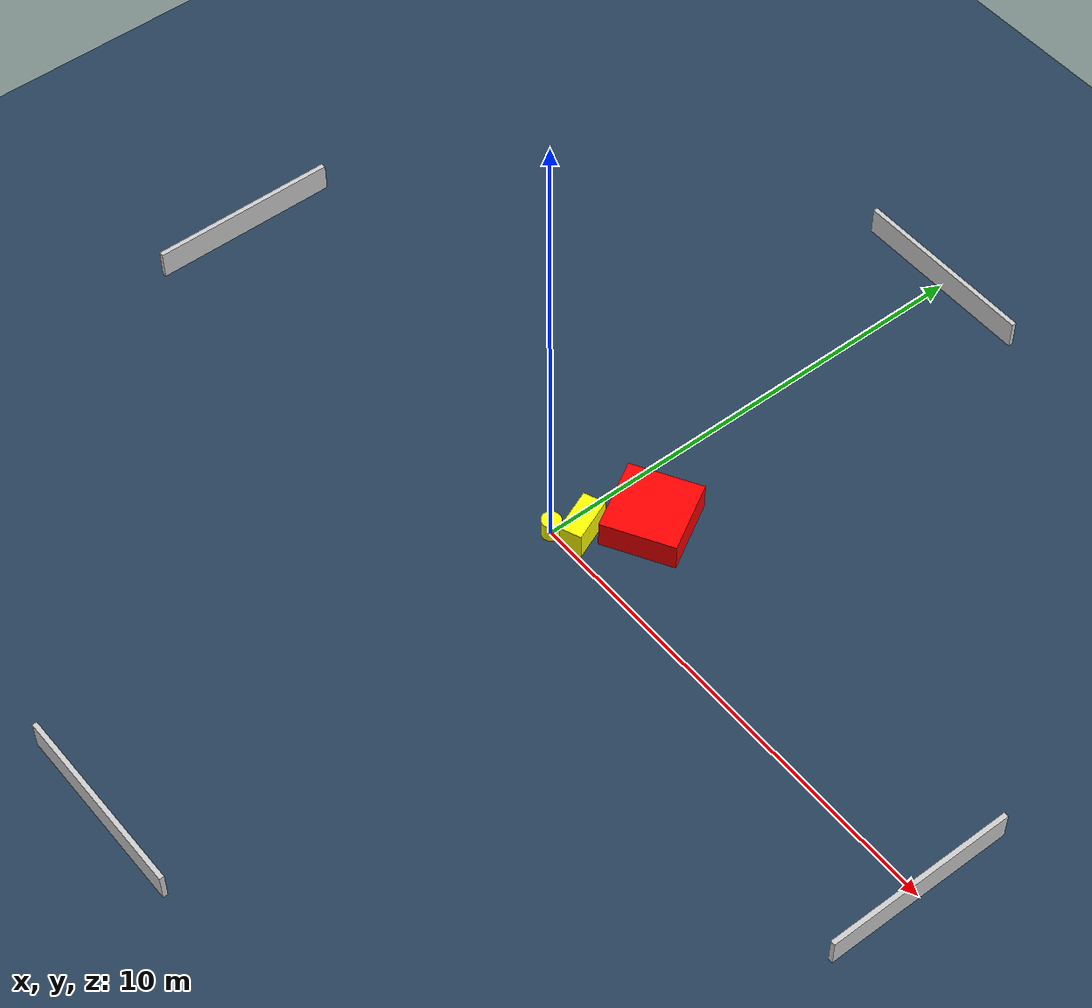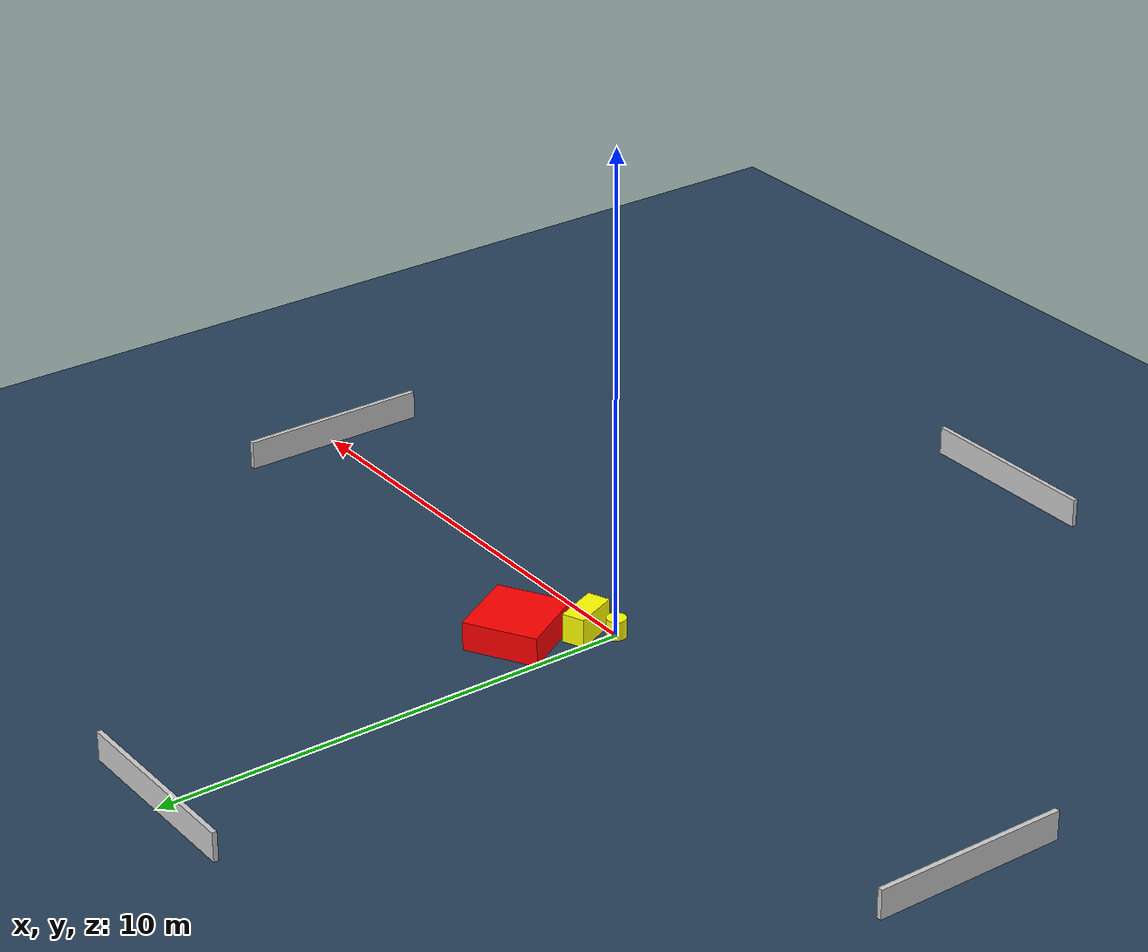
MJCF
<?xml version="1.0" ?>
<mujoco model="generated_environment">
  <option timestep="0.01" integrator="RK4" cone="elliptic"/>
  <default>
    <geom density="1"/>
  </default>
  <asset>
    <texture builtin="gradient" height="3072" name="skybox" rgb1="0.3 0.5 0.7" rgb2="0 0 0" type="skybox" width="512"/>
    <texture builtin="checker" height="300" name="groundplane" rgb1="0.2 0.3 0.4" rgb2="0.1 0.2 0.3" type="2d" width="300"/>
    <material name="groundplane" reflectance="0.2" texrepeat="5 5" texture="groundplane"/>
  </asset>
  <worldbody>
    <light dir="0 0 -1" directional="true" pos="0 0 1.5"/>
    <geom condim="3" friction="0.5 0.005 0.001" material="groundplane" name="floor" pos="0 0 0" size="0 0 0.05" type="plane"/>
    <body name="walls">
      <geom name="wall_1" condim="4" pos="-10.0 0.0 0.3" rgba="0.800000011920929 0.800000011920929 0.800000011920929 1.0" size="0.05 2.0 0.3" type="box"/>
      <geom name="wall_2" condim="4" pos="10.0 0.0 0.3" rgba="0.800000011920929 0.800000011920929 0.800000011920929 1.0" size="0.05 2.0 0.3" type="box"/>
      <geom name="wall_3" condim="4" pos="0.0 -10.0 0.3" rgba="0.800000011920929 0.800000011920929 0.800000011920929 1.0" size="2.0 0.05 0.3" type="box"/>
      <geom name="wall_4" condim="4" pos="0.0 10.0 0.3" rgba="0.800000011920929 0.800000011920929 0.800000011920929 1.0" size="2.0 0.05 0.3" type="box"/>
    </body>
    <body name="robot">
      <joint name="joint_x" type="slide" pos="0 0 0" axis="1 0 0"/>
      <joint name="joint_y" type="slide" pos="0 0 0" axis="0 1 0"/>
      <geom name="robot" type="cylinder" pos="0.0 0.0 0.2" size="0.2 0.2 0.0" mass="5.0" friction="1.0 0.005 0.0001" condim="4" rgba="1.0 1.0 0.0 1.0"/>
    </body>
    <body name="obstacle_1_movable">
      <geom name="obstacle_1_movable" condim="4" pos="0.4004207450674489 0.4206248357964164 0.3" euler="0 0 202.34159119779946" friction="0.0 0.005 0.001" rgba="1.0 1.0 0.0 1.0" size="0.23346315485311236 0.47494003487968084 0.3" type="box" mass="0.1"/>
      <joint type="free"/>
    </body>
    <body name="obstacle_2_static">
      <geom name="obstacle_2_static" condim="4" pos="1.0313665863379207 1.5820005877945995 0.3" euler="0 0 119.8885766895838" friction="0.0 0.005 0.001" rgba="1.0 0.0 0.0 1.0" size="0.7836185773700735 0.7707868789078611 0.3" type="box"/>
    </body>
  </worldbody>
  <actuator>
    <motor name="actuator_x" joint="joint_x" gear="1" ctrlrange="-1 1"/>
    <motor name="actuator_y" joint="joint_y" gear="1" ctrlrange="-1 1"/>
  </actuator>
</mujoco>
